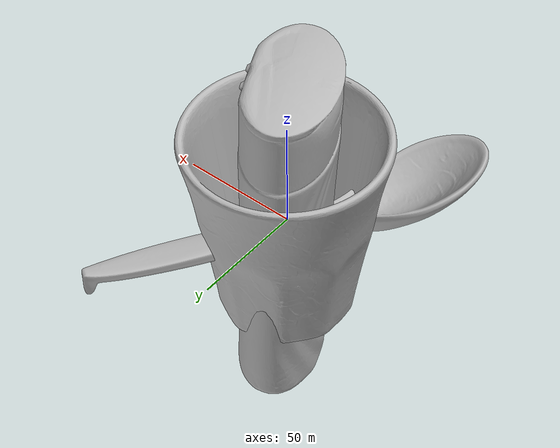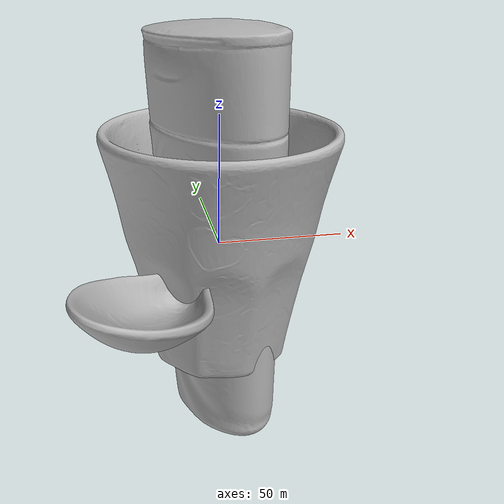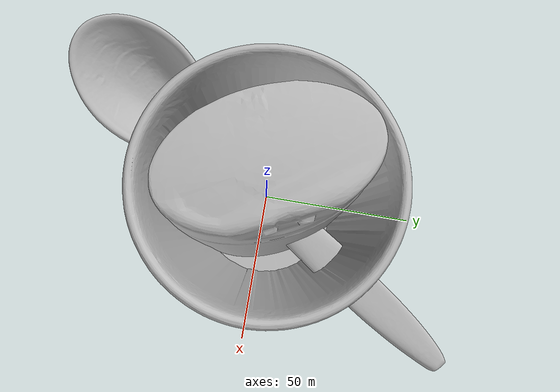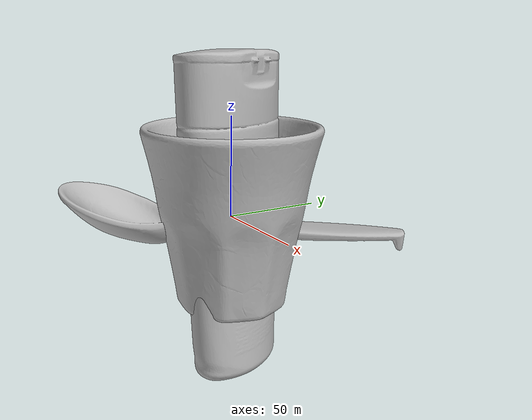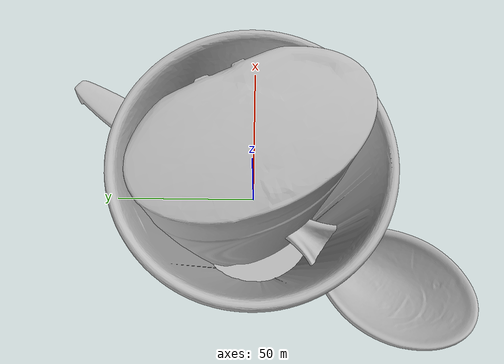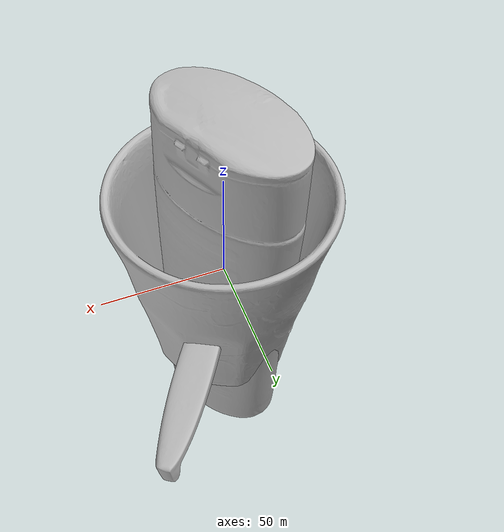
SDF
<sdf version="1.4">
 <world name="default">
  <light name="light1" type="point">
   <pose>0 0 1 0 0 0</pose>
   <diffuse>3 3 3 1</diffuse>
   <specular>3 3 3 1</specular>
  </light>
  <light name="light2" type="point">
   <pose>0 0.5 2 0 0 0</pose>
   <diffuse>1 1 1 1</diffuse>
   <specular>1 1 1 1</specular>
  </light>
  <light name="light3" type="point">
   <pose>0 0.5 2 0 0 0</pose>
   <diffuse>3 3 3 1</diffuse>
   <specular>3 3 3 1</specular>
  </light>
  <scene><ambient>0.7 0.7 0.7</ambient></scene>
  <model name="bottle1">
   <link name="link_bottle1">
    <collision name="default">
     <geometry>
      <mesh><uri>model://conditioner/collision_meshes/collision.obj</uri><scale>1.0 1.0 1.0</scale></mesh>
     </geometry>
     <surface>
      <friction><ode><mu>0.5</mu><mu2>0.5</mu2></ode></friction>
      <contact><ode><max_vel>0</max_vel><min_depth>0.0001</min_depth><kp>1e8</kp></ode></contact>
     </surface>
    </collision>
    <visual name="default">
     <geometry>
      <mesh><uri>model://conditioner/visual_meshes/visual.dae</uri><scale>1.0 1.0 1.0</scale></mesh>
     </geometry>
    </visual>
    <inertial>
     <mass>0.31316134333610535</mass>
     <pose>-0.00055994390277192 -0.0001729748910292983 0.004359682556241751 -0.005038373535624127 0.01530604069317056 0.015072338587352078</pose>
     <inertia>
      <ixx>0.0006812382</ixx>
      <iyy>0.000729753</iyy>
      <izz>0.000105037434</izz>
      <ixy>0</ixy>
      <ixz>0</ixz>
      <iyz>0</iyz>
     </inertia>
    </inertial>
   </link>
   <pose>0.27216044068336487 0.2051355242729187 0.08122976124286652 0.03689223258969796 -0.01566016881173496 -1.141716757227985</pose>
  </model>
  <model name="bottle2">
   <link name="link_bottle2">
    <collision name="default">
     <geometry>
      <mesh><uri>model://pigeon/collision_meshes/collision.obj</uri><scale>1.0 1.0 1.0</scale></mesh>
     </geometry>
     <surface>
      <friction><ode><mu>0.5</mu><mu2>0.5</mu2></ode></friction>
      <contact><ode><max_vel>0</max_vel><min_depth>0.0001</min_depth><kp>1e8</kp></ode></contact>
     </surface>
    </collision>
    <visual name="default">
     <geometry><mesh><uri>model://pigeon/visual_meshes/visual.dae</uri><scale>1.0 1.0 1.0</scale></mesh></geometry>
    </visual>
    <inertial>
     <mass>0.6510184407234192</mass>
     <pose>-9.675473847892135e-05 -0.00019276776583865285 -0.01593620888888836 -0.011704407543161608 -0.0012978192378484078 -0.04198827283679603</pose>
     <inertia>
      <ixx>0.0016273881</ixx>
      <iyy>0.0017372583</iyy>
      <izz>0.00033475916</izz>
      <ixy>0</ixy>
      <ixz>0</ixz>
      <iyz>0</iyz>
     </inertia>
    </inertial>
   </link>
   <pose>-0.06813564151525497 -0.033420220017433167 0.09864479303359985 2.4473905168759155e-05 3.4731913306805903e-06 -1.2092890635784883</pose>
  </model>
  <model name="silverware1">
   <link name="link_silverware1">
    <collision name="default">
     <geometry>
      <mesh><uri>model://doraemon_spoon/collision_meshes/collision.obj</uri><scale>1.0 1.0 1.0</scale></mesh>
     </geometry>
     <surface>
      <friction><ode><mu>0.5</mu><mu2>0.5</mu2></ode></friction>
      <contact><ode><max_vel>0</max_vel><min_depth>0.0001</min_depth><kp>1e8</kp></ode></contact>
     </surface>
    </collision>
    <visual name="default">
     <geometry>
      <mesh><uri>model://doraemon_spoon/visual_meshes/visual.dae</uri><scale>1.0 1.0 1.0</scale></mesh>
     </geometry>
    </visual>
    <inertial>
     <mass>0.020366016775369644</mass>
     <pose>-0.022165074944496155 -0.0006374584045261145 -0.0033325462136417627 -0.009147200915366215 0.0738041822243956 -0.014123826891092987</pose>
     <inertia>
      <ixx>1.5952605e-06</ixx>
      <iyy>4.5307766e-05</iyy>
      <izz>4.6078047e-05</izz>
      <ixy>0</ixy>
      <ixz>0</ixz>
      <iyz>0</iyz>
     </inertia>
    </inertial>
   </link>
   <pose>0.0640159621834755 -0.2106325775384903 0.01491780485957861 0.10701484790547329 -0.003999161637493194 0.9958627719673248</pose>
  </model>
  <model name="stationery1">
   <link name="link_stationery1">
    <collision name="default">
     <geometry>
      <mesh><uri>model://correction_fuid/collision_meshes/collision.obj</uri><scale>1.0 1.0 1.0</scale></mesh>
     </geometry>
     <surface>
      <friction><ode><mu>0.5</mu><mu2>0.5</mu2></ode></friction>
      <contact><ode><max_vel>0</max_vel><min_depth>0.0001</min_depth><kp>1e8</kp></ode></contact>
     </surface>
    </collision>
    <visual name="default">
     <geometry>
      <mesh><uri>model://correction_fuid/visual_meshes/visual.dae</uri><scale>1.0 1.0 1.0</scale></mesh>
     </geometry>
    </visual>
    <inertial>
     <mass>0.02487199380993843</mass>
     <pose>-0.00012557733862195164 -0.0009722901741042733 -0.001618212671019137 -0.010846607936808557 0.019488255039962172 -0.015992454917835536</pose>
     <inertia>
      <ixx>2.4088951e-05</ixx>
      <iyy>1.4578937e-06</iyy>
      <izz>2.4715917e-05</izz>
      <ixy>0</ixy>
      <ixz>0</ixz>
      <iyz>0</iyz>
     </inertia>
    </inertial>
   </link>
   <pose>0.1010735034942627 -0.1269390881061554 0.016991853713989258 -0.15573599456536052 -0.21073233195941146 0.09566033499817589</pose>
  </model>
  <model name="bowl1">
   <link name="link_bowl1">
    <collision name="default">
     <geometry>
      <mesh><uri>model://doraemon_bowl/collision_meshes/collision.obj</uri><scale>1.0 1.0 1.0</scale></mesh>
     </geometry>
     <surface>
      <friction><ode><mu>0.5</mu><mu2>0.5</mu2></ode></friction>
      <contact><ode><max_vel>0</max_vel><min_depth>0.0001</min_depth><kp>1e8</kp></ode></contact>
     </surface>
    </collision>
    <visual name="default">
     <geometry>
      <mesh><uri>model://doraemon_bowl/visual_meshes/visual.dae</uri><scale>1.0 1.0 1.0</scale></mesh>
     </geometry>
    </visual>
    <inertial>
     <mass>0.06713785231113434</mass>
     <pose>-0.014629548415541649 0.000485710974317044 -0.0020864871330559254 -0.005093962398800634 -0.10568405274446478 -0.026426476578293747</pose>
     <inertia>
      <ixx>9.309732e-05</ixx>
      <iyy>0.00012251528</iyy>
      <izz>0.00018024874</izz>
      <ixy>0</ixy>
      <ixz>0</ixz>
      <iyz>0</iyz>
     </inertia>
    </inertial>
   </link>
   <pose>-0.04910006374120712 0.30720382928848267 0.025905456393957138 0.008594855552696748 0.006343876132127146 2.1377035862847706</pose>
  </model>
  <model name="cup1">
   <link name="link_cup1">
    <collision name="default">
     <geometry>
      <mesh><uri>model://hello_kitty_cup/collision_meshes/collision.obj</uri><scale>1.0 1.0 1.0</scale></mesh>
     </geometry>
     <surface>
      <friction><ode><mu>0.5</mu><mu2>0.5</mu2></ode></friction>
      <contact><ode><max_vel>0</max_vel><min_depth>0.0001</min_depth><kp>1e8</kp></ode></contact>
     </surface>
    </collision>
    <visual name="default">
     <geometry>
      <mesh><uri>model://hello_kitty_cup/visual_meshes/visual.dae</uri><scale>1.0 1.0 1.0</scale></mesh>
     </geometry>
    </visual>
    <inertial>
     <mass>0.13384777307510376</mass>
     <pose>0.00027251095161773264 0.00027950218645855784 0.0030449770856648684 0.057791450277227645 0.007964955326408191 -0.02045228086216793</pose>
     <inertia>
      <ixx>0.0001843247</ixx>
      <iyy>0.0001863793</iyy>
      <izz>0.00015541737</izz>
      <ixy>0</ixy>
      <ixz>0</ixz>
      <iyz>0</iyz>
     </inertia>
    </inertial>
   </link>
   <pose>-0.03786785900592804 0.0810166671872139 0.046216316521167755 -0.005878304075351327 0.010797597338284483 -0.37812988267396114</pose>
  </model>
  <model name="plate1">
   <link name="link_plate1">
    <collision name="default">
     <geometry>
      <mesh><uri>model://hello_kitty_plate/collision_meshes/collision.obj</uri><scale>1.0 1.0 1.0</scale></mesh>
     </geometry>
     <surface>
      <friction><ode><mu>0.5</mu><mu2>0.5</mu2></ode></friction>
      <contact><ode><max_vel>0</max_vel><min_depth>0.0001</min_depth><kp>1e8</kp></ode></contact>
     </surface>
    </collision>
    <visual name="default">
     <geometry>
      <mesh><uri>model://hello_kitty_plate/visual_meshes/visual.dae</uri><scale>1.0 1.0 1.0</scale></mesh>
     </geometry>
    </visual>
    <inertial>
     <mass>0.0821625292301178</mass>
     <pose>0.0073142931796610355 0.00028937371098436415 -0.0027947186026722193 -0.0001043184795654353 -0.007054440405958318 -0.014449014916312054</pose>
     <inertia>
      <ixx>0.00015843393</ixx>
      <iyy>0.00029901267</iyy>
      <izz>0.00045402072</izz>
      <ixy>0</ixy>
      <ixz>0</ixz>
      <iyz>0</iyz>
     </inertia>
    </inertial>
   </link>
   <pose>0.20893877744674683 0.0764443427324295 0.008291369304060936 0.0004631032289938556 0.004169862243177587 -1.7432940228661788</pose>
  </model>
  <physics type="ode">
   <max_contacts>50</max_contacts>
   <ode>
    <solver><type>quick</type><iters>75</iters></solver>
    <constraints>
     <contact_max_correcting_vel>0</contact_max_correcting_vel>
     <contact_surface_layer>0</contact_surface_layer>
    </constraints>
   </ode>
  </physics>
 </world>
</sdf>
